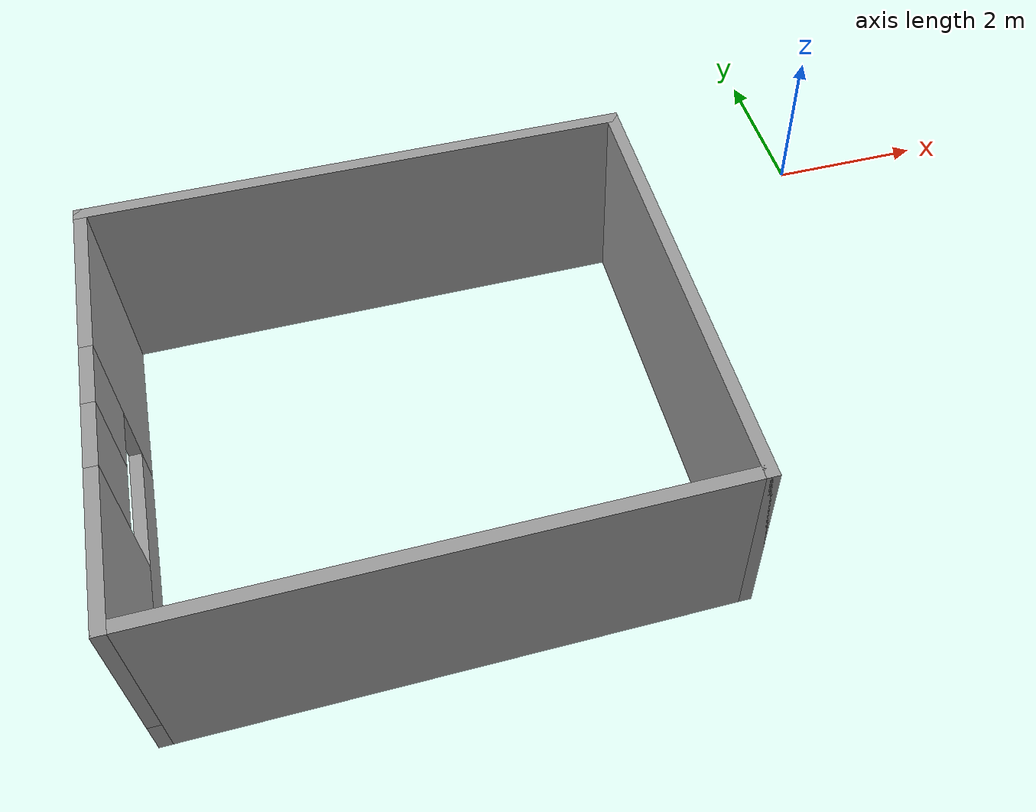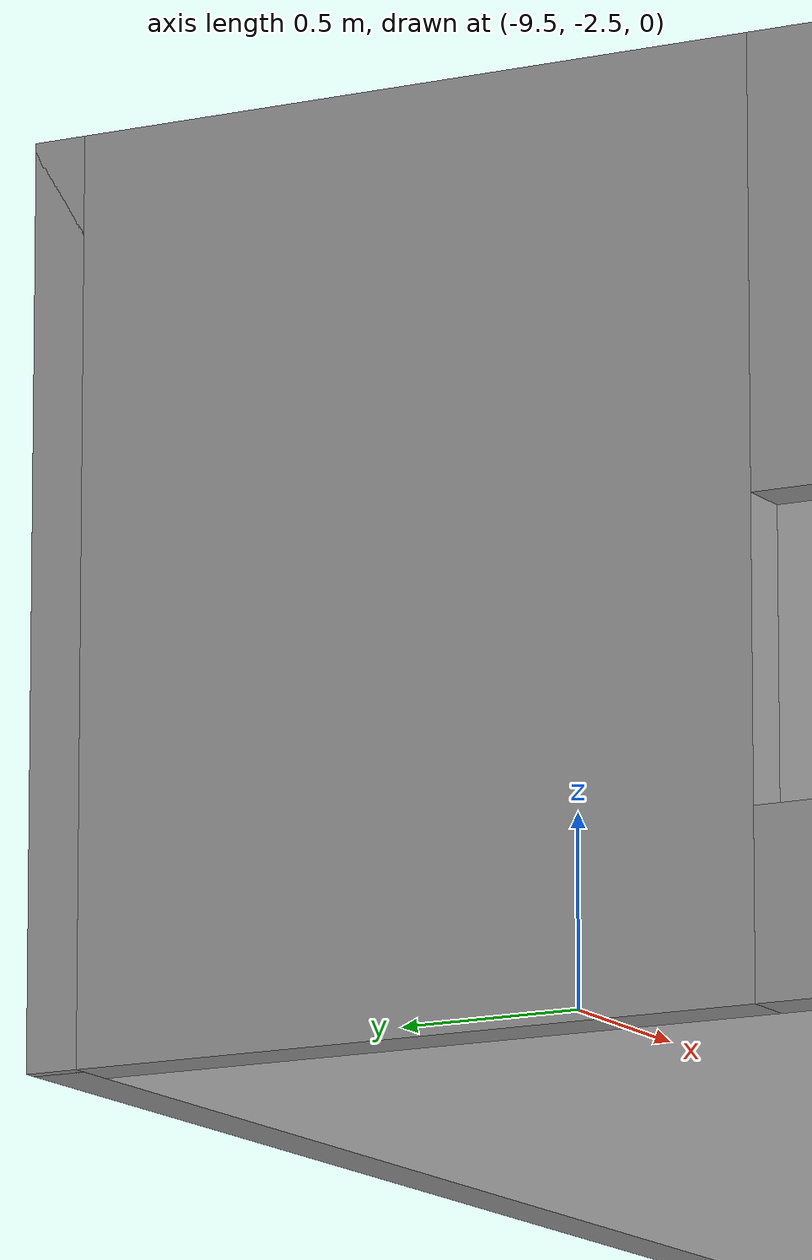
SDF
<?xml version='1.0'?>
<sdf version='1.6'>
  <model name='STANZA'>
    <pose frame=''>-6.125 -3.575 0 0 -0 0</pose>
    <link name='Wall_0'>
      <collision name='Wall_0_Collision'>
        <geometry>
          <box>
            <size>6.5 0.15 2.5</size>
          </box>
        </geometry>
        <pose frame=''>0 0 1.25 0 -0 0</pose>
      </collision>
      <visual name='Wall_0_Visual'>
        <pose frame=''>0 0 1.25 0 -0 0</pose>
        <geometry>
          <box>
            <size>6.5 0.15 2.5</size>
          </box>
        </geometry>
        <material>
          <script>
            <uri>file://media/materials/scripts/gazebo.material</uri>
            <name>Gazebo/Grey</name>
          </script>
          <ambient>1 1 1 1</ambient>
        </material>
      </visual>
      <pose frame=''>0 2.675 0 0 -0 3.14159</pose>
    </link>
    <link name='Wall_1'>
      <collision name='Wall_1_Collision'>
        <geometry>
          <box>
            <size>0.15 0.15 2.5</size>
          </box>
        </geometry>
        <pose frame=''>0 0 1.25 0 -0 0</pose>
      </collision>
      <visual name='Wall_1_Visual'>
        <pose frame=''>0 0 1.25 0 -0 0</pose>
        <geometry>
          <box>
            <size>0.15 0.15 2.5</size>
          </box>
        </geometry>
        <material>
          <script>
            <uri>file://media/materials/scripts/gazebo.material</uri>
            <name>Gazebo/Grey</name>
          </script>
          <ambient>1 1 1 1</ambient>
        </material>
      </visual>
      <pose frame=''>-3.175 2.675 0 0 -0 0</pose>
    </link>
    <link name='Wall_2'>
      <collision name='Wall_2_Collision'>
        <geometry>
          <box>
            <size>0.15 0.15 2.5</size>
          </box>
        </geometry>
        <pose frame=''>0 0 1.25 0 -0 0</pose>
      </collision>
      <visual name='Wall_2_Visual'>
        <pose frame=''>0 0 1.25 0 -0 0</pose>
        <geometry>
          <box>
            <size>0.15 0.15 2.5</size>
          </box>
        </geometry>
        <material>
          <script>
            <uri>file://media/materials/scripts/gazebo.material</uri>
            <name>Gazebo/Grey</name>
          </script>
          <ambient>1 1 1 1</ambient>
        </material>
      </visual>
      <pose frame=''>-3.175 2.675 0 0 -0 0</pose>
    </link>
    <link name='Wall_3'>
      <collision name='Wall_3_Collision'>
        <geometry>
          <box>
            <size>0.15 0.15 2.5</size>
          </box>
        </geometry>
        <pose frame=''>0 0 1.25 0 -0 0</pose>
      </collision>
      <visual name='Wall_3_Visual'>
        <pose frame=''>0 0 1.25 0 -0 0</pose>
        <geometry>
          <box>
            <size>0.15 0.15 2.5</size>
          </box>
        </geometry>
        <material>
          <script>
            <uri>file://media/materials/scripts/gazebo.material</uri>
            <name>Gazebo/Grey</name>
          </script>
          <ambient>1 1 1 1</ambient>
        </material>
      </visual>
      <pose frame=''>-3.175 2.675 0 0 -0 0</pose>
    </link>
    <link name='Wall_4'>
      <pose frame=''>-3.175 0 0 0 0 -1.5708</pose>
      <visual name='Wall_4_Visual_0'>
        <pose frame=''>-1.70011 0 1.25 0 -0 0</pose>
        <geometry>
          <box>
            <size>2.09977 0.15 2.5</size>
          </box>
        </geometry>
        <material>
          <script>
            <uri>file://media/materials/scripts/gazebo.material</uri>
            <name>Gazebo/Grey</name>
          </script>
          <ambient>1 1 1 1</ambient>
        </material>
      </visual>
      <collision name='Wall_4_Collision_0'>
        <geometry>
          <box>
            <size>2.09977 0.15 2.5</size>
          </box>
        </geometry>
        <pose frame=''>-1.70011 0 1.25 0 -0 0</pose>
      </collision>
      <visual name='Wall_4_Visual_1'>
        <pose frame=''>1.04989 0 0.25 0 -0 0</pose>
        <geometry>
          <box>
            <size>3.40023 0.15 0.5</size>
          </box>
        </geometry>
        <material>
          <script>
            <uri>file://media/materials/scripts/gazebo.material</uri>
            <name>Gazebo/Grey</name>
          </script>
          <ambient>1 1 1 1</ambient>
        </material>
      </visual>
      <collision name='Wall_4_Collision_1'>
        <geometry>
          <box>
            <size>3.40023 0.15 0.5</size>
          </box>
        </geometry>
        <pose frame=''>1.04989 0 0.25 0 -0 0</pose>
      </collision>
      <visual name='Wall_4_Visual_2'>
        <pose frame=''>1.8268 0 1.5 0 -0 0</pose>
        <geometry>
          <box>
            <size>1.8464 0.15 2</size>
          </box>
        </geometry>
        <material>
          <script>
            <uri>file://media/materials/scripts/gazebo.material</uri>
            <name>Gazebo/Grey</name>
          </script>
          <ambient>1 1 1 1</ambient>
        </material>
      </visual>
      <collision name='Wall_4_Collision_2'>
        <geometry>
          <box>
            <size>1.8464 0.15 2</size>
          </box>
        </geometry>
        <pose frame=''>1.8268 0 1.5 0 -0 0</pose>
      </collision>
      <visual name='Wall_4_Visual_3'>
        <pose frame=''>-0.273315 0 1.9 0 -0 0</pose>
        <geometry>
          <box>
            <size>0.753825 0.15 1.2</size>
          </box>
        </geometry>
        <material>
          <script>
            <uri>file://media/materials/scripts/gazebo.material</uri>
            <name>Gazebo/Grey</name>
          </script>
          <ambient>1 1 1 1</ambient>
        </material>
      </visual>
      <collision name='Wall_4_Collision_3'>
        <geometry>
          <box>
            <size>0.753825 0.15 1.2</size>
          </box>
        </geometry>
        <pose frame=''>-0.273315 0 1.9 0 -0 0</pose>
      </collision>
      <visual name='Wall_4_Visual_4'>
        <pose frame=''>0.503597 0 1.9 0 -0 0</pose>
        <geometry>
          <box>
            <size>0.8 0.15 1.2</size>
          </box>
        </geometry>
        <material>
          <script>
            <uri>file://media/materials/scripts/gazebo.material</uri>
            <name>Gazebo/Grey</name>
          </script>
          <ambient>1 1 1 1</ambient>
        </material>
      </visual>
      <collision name='Wall_4_Collision_4'>
        <geometry>
          <box>
            <size>0.8 0.15 1.2</size>
          </box>
        </geometry>
        <pose frame=''>0.503597 0 1.9 0 -0 0</pose>
      </collision>
    </link>
    <link name='Wall_5'>
      <collision name='Wall_5_Collision'>
        <geometry>
          <box>
            <size>6.5 0.15 2.5</size>
          </box>
        </geometry>
        <pose frame=''>0 0 1.25 0 -0 0</pose>
      </collision>
      <visual name='Wall_5_Visual'>
        <pose frame=''>0 0 1.25 0 -0 0</pose>
        <geometry>
          <box>
            <size>6.5 0.15 2.5</size>
          </box>
        </geometry>
        <material>
          <script>
            <uri>file://media/materials/scripts/gazebo.material</uri>
            <name>Gazebo/Grey</name>
          </script>
          <ambient>1 1 1 1</ambient>
        </material>
      </visual>
      <pose frame=''>0 -2.675 0 0 -0 0</pose>
    </link>
    <link name='Wall_6'>
      <collision name='Wall_6_Collision'>
        <geometry>
          <box>
            <size>5.5 0.15 2.5</size>
          </box>
        </geometry>
        <pose frame=''>0 0 1.25 0 -0 0</pose>
      </collision>
      <visual name='Wall_6_Visual'>
        <pose frame=''>0 0 1.25 0 -0 0</pose>
        <geometry>
          <box>
            <size>5.5 0.15 2.5</size>
          </box>
        </geometry>
        <material>
          <script>
            <uri>file://media/materials/scripts/gazebo.material</uri>
            <name>Gazebo/Grey</name>
          </script>
          <ambient>1 1 1 1</ambient>
        </material>
      </visual>
      <pose frame=''>3.175 0 0 0 -0 1.5708</pose>
    </link>
    <static>1</static>
  </model>
</sdf>
